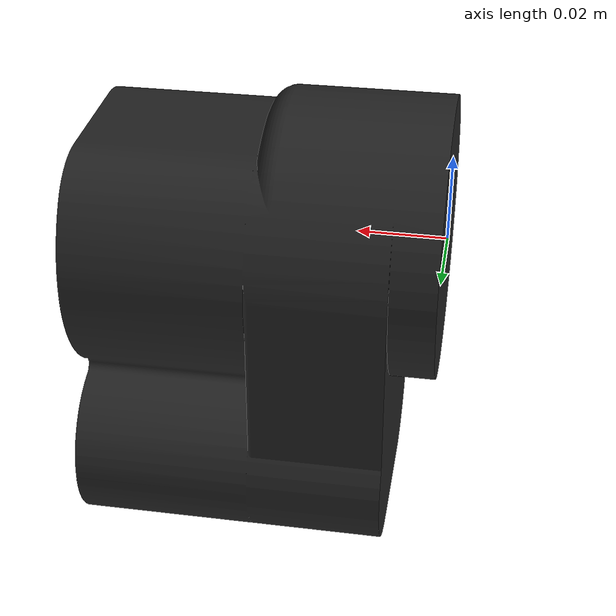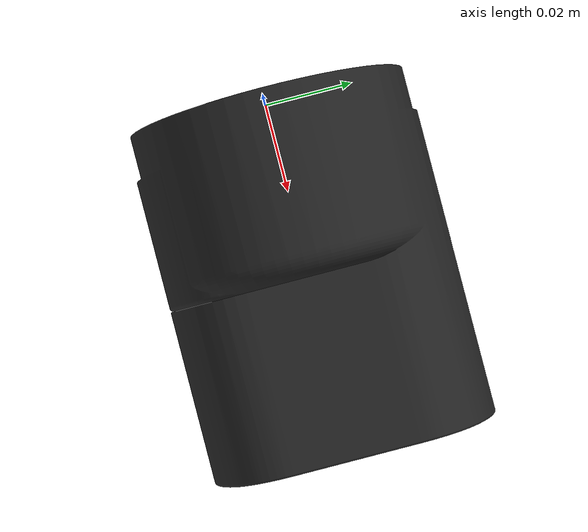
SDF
<?xml version="1.0" ?>
<sdf version="1.9">
<model name="eef">
  <pose>0 0 0 0 0 0</pose>
  <link name="link">
    <visual name="visual">
      <geometry>
        <mesh>
          <uri>model://eef/meshes/eef.dae</uri>
          <scale>1 1 1</scale>
        </mesh>
      </geometry>
    </visual>
    <collision name="collision">
      <geometry>
        <mesh>
          <uri>model://eef/meshes/eef.dae</uri>
          <scale>1 1 1</scale>
        </mesh>
      </geometry>
    </collision>
  </link>
</model>
</sdf>
